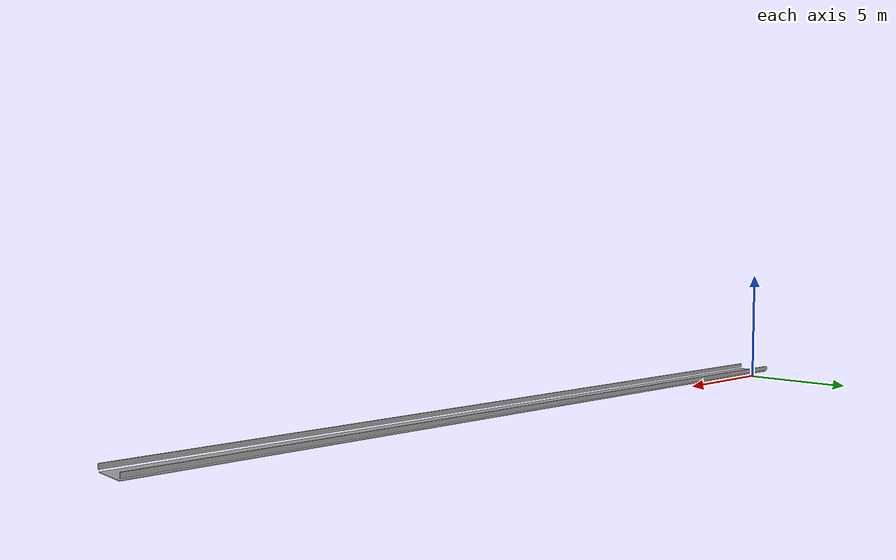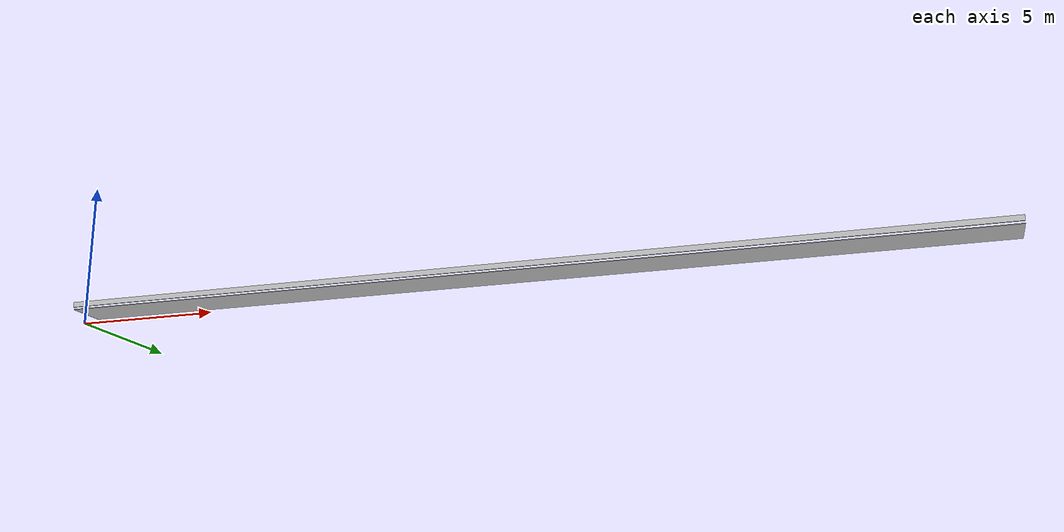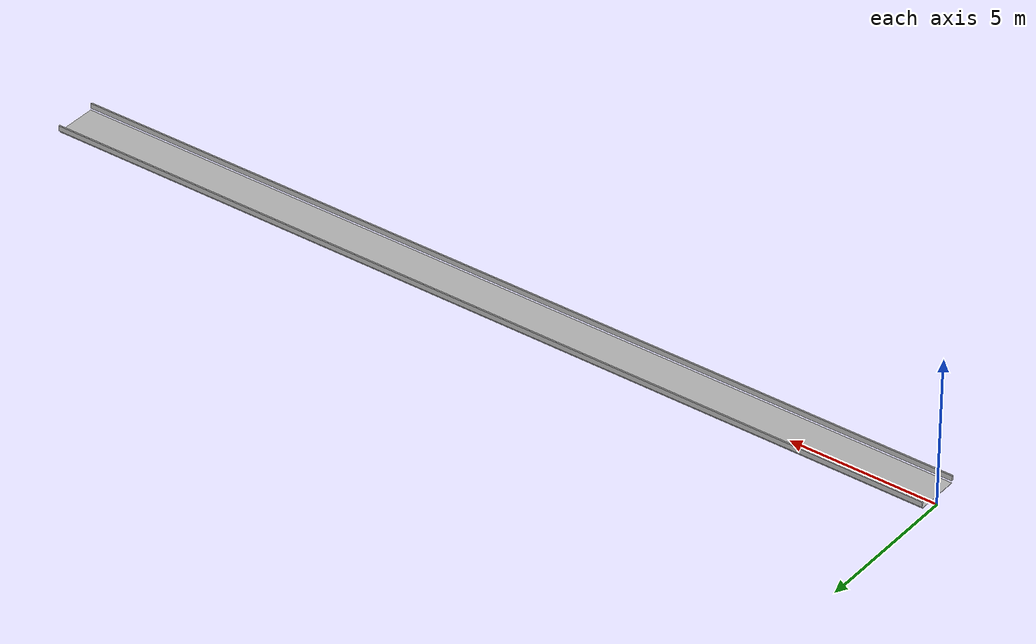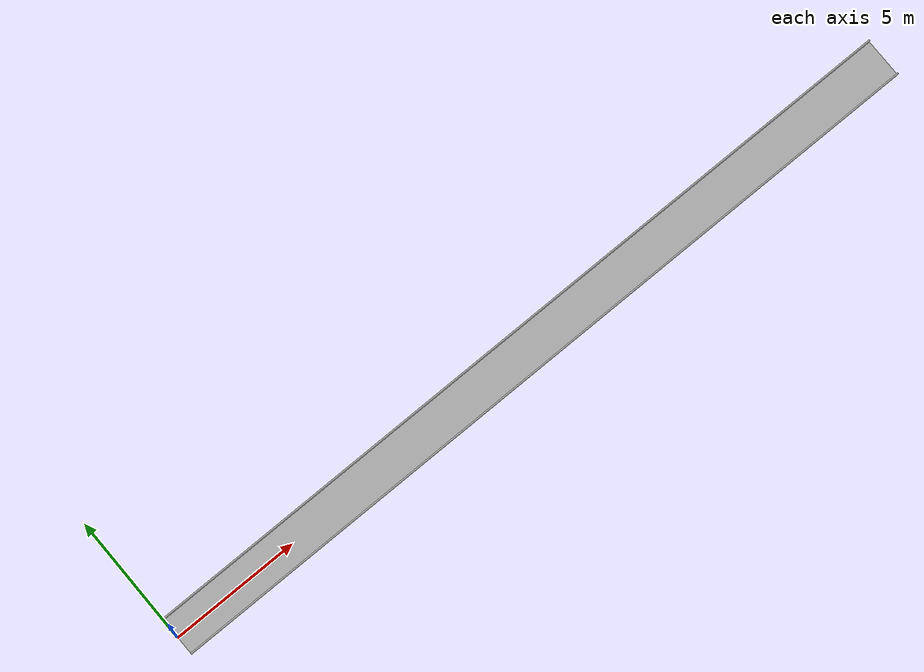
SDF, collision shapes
<?xml version="1.0"?>
<sdf version="1.7">
  <model name="subway_tunnel_v2">
    <static>true</static>
    <link name="tunnel">
      <!-- tunnel_8.10 stays at native scale; collisions match its rail geometry. -->
      <collision name="center_drive_surface">
        <pose>15.6 0 0.33 0 0 0</pose>
        <geometry>
          <box>
            <size>31.2 1.45 0.02</size>
          </box>
        </geometry>
        <surface>
          <friction>
            <ode>
              <mu>1.0</mu>
              <mu2>1.0</mu2>
            </ode>
          </friction>
          <contact>
            <ode>
              <kp>1e+06</kp>
              <kd>10</kd>
              <max_vel>0.1</max_vel>
              <min_depth>0.001</min_depth>
            </ode>
          </contact>
        </surface>
      </collision>
      <collision name="left_rail_collision">
        <pose>15.6 0.754 0.486 0 0 0</pose>
        <geometry>
          <box>
            <size>31.2 0.05 0.176</size>
          </box>
        </geometry>
      </collision>
      <collision name="right_rail_collision">
        <pose>15.6 -0.754 0.486 0 0 0</pose>
        <geometry>
          <box>
            <size>31.2 0.05 0.176</size>
          </box>
        </geometry>
      </collision>
      <visual name="tunnel_visual">
        <geometry>
          <mesh>
            <uri>model://subway_tunnel_v2/meshes/subway_tunnel_v2.dae</uri>
            <scale>1 1 1</scale>
          </mesh>
        </geometry>
        <cast_shadows>true</cast_shadows>
      </visual>
    </link>
  </model>
</sdf>
